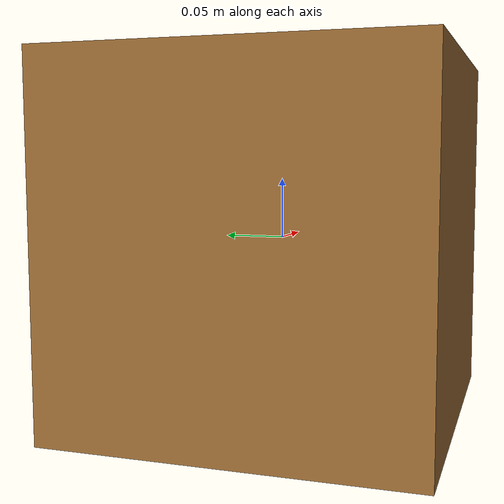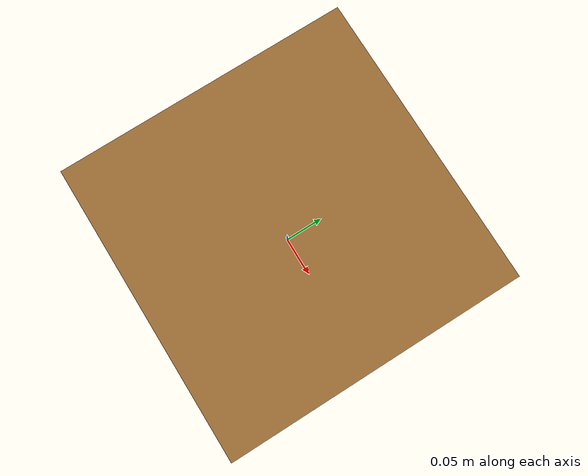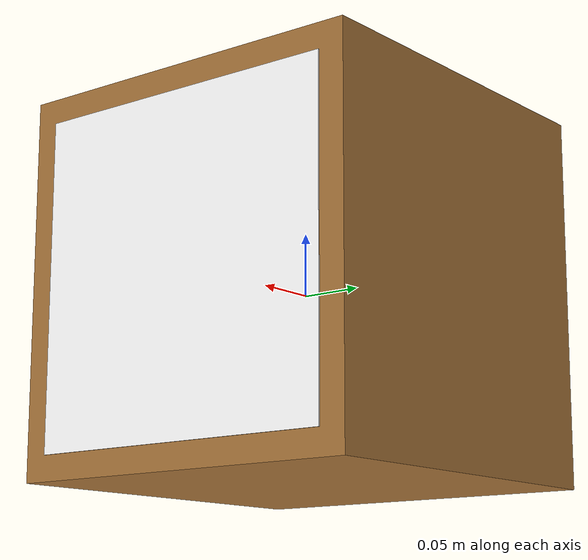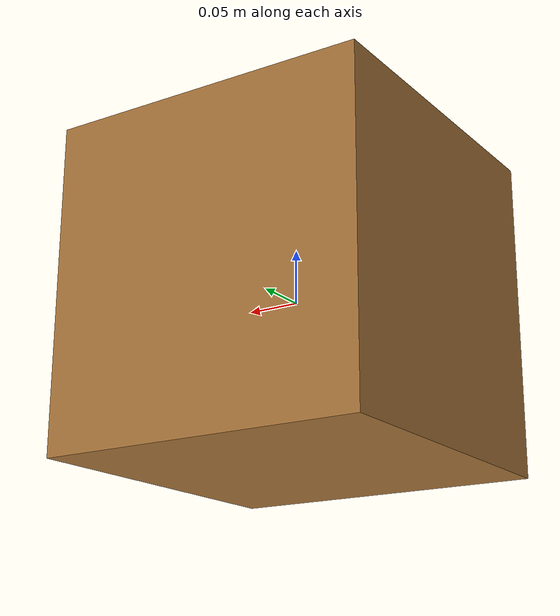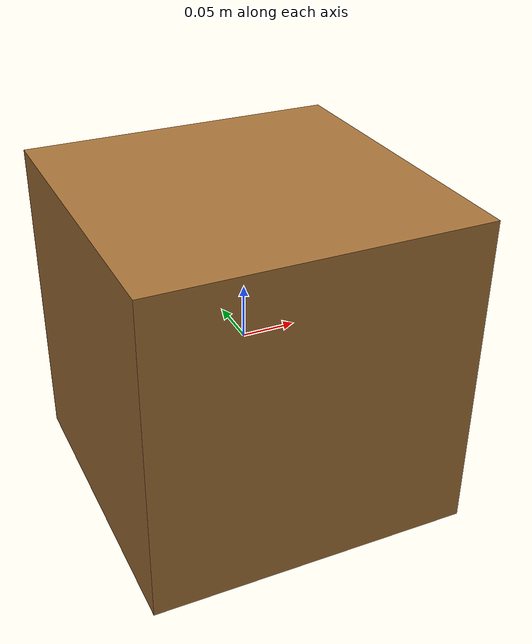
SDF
<?xml version="1.0"?>
<sdf version="1.9">
  <model name="caja_qr">

    <!-- La caja es estática: no rueda ni se mueve por física -->
    <static>true</static>

    <link name="caja_link">

      <!-- ── Pose del centro de masa: encima del suelo ── -->
      <pose>0 0 0 0 0 0</pose>

      <!-- ── Inercia (ligera, es estática pero se define por buena práctica) ── -->
      <inertial>
        <mass>2.0</mass>
        <inertia>
          <ixx>0.015</ixx> <ixy>0</ixy> <ixz>0</ixz>
          <iyy>0.015</iyy> <iyz>0</iyz>
          <izz>0.015</izz>
        </inertia>
      </inertial>

      <!-- ── Colisión: cuerpo principal de la caja ── -->
      <collision name="caja_col">
        <geometry>
          <box>
            <size>0.30 0.30 0.30</size>
          </box>
        </geometry>
        <surface>
          <friction>
            <ode><mu>0.8</mu><mu2>0.8</mu2></ode>
          </friction>
        </surface>
      </collision>

      <!-- ── Visual 1: cuerpo de cartón marrón ── -->
      <visual name="cuerpo_visual">
        <geometry>
          <box>
            <size>0.30 0.30 0.30</size>
          </box>
        </geometry>
        <material>
          <!-- Color cartón -->
          <ambient>0.55 0.38 0.18 1</ambient>
          <diffuse>0.65 0.45 0.22 1</diffuse>
          <specular>0.05 0.05 0.05 1</specular>
        </material>
      </visual>

      <visual name="qr_visual">
        <pose>0.151 0 0  0 0 0</pose>
        <geometry>
          <box>
            <!-- Grosor mínimo × ancho del panel × alto del panel -->
            <size>0.001 0.26 0.26</size>
          </box>
        </geometry>
        <material>
          <pbr>
            <metal>
              <albedo_map>model://caja_qr/materials/textures/QR-prueba1.png</albedo_map>
              <metalness>0.0</metalness>
              <roughness>0.9</roughness>
            </metal>
          </pbr>
          <ambient>1 1 1 1</ambient>
          <diffuse>1 1 1 1</diffuse>
          <!-- Desactivar mipmapping para preservar los módulos del QR nítidos -->
          <script>
            <uri>model://caja_qr/materials/scripts/qr.material</uri>
            <name>CarryBot/QRCode</name>
          </script>
        </material>
      </visual>

    </link>
  </model>
</sdf>
